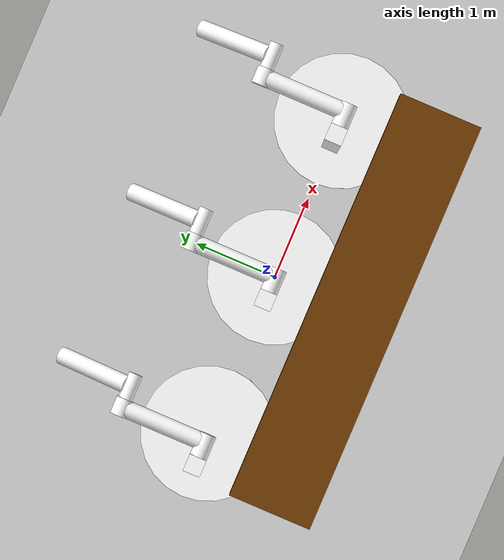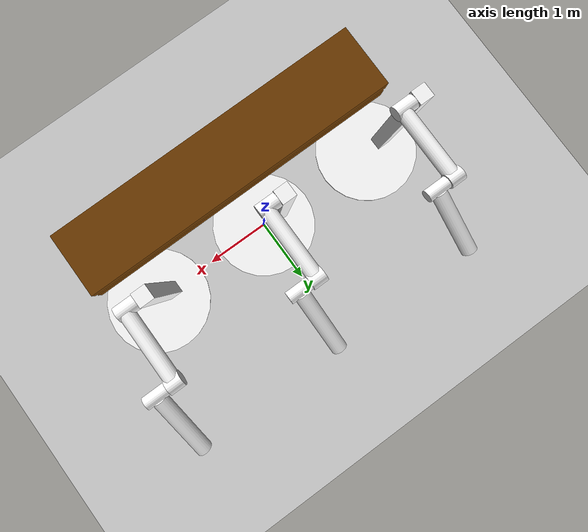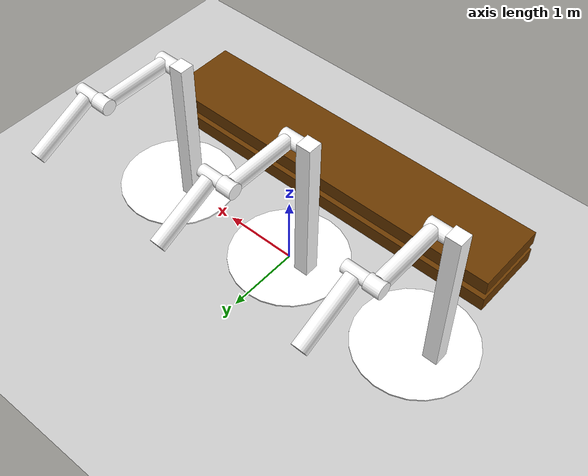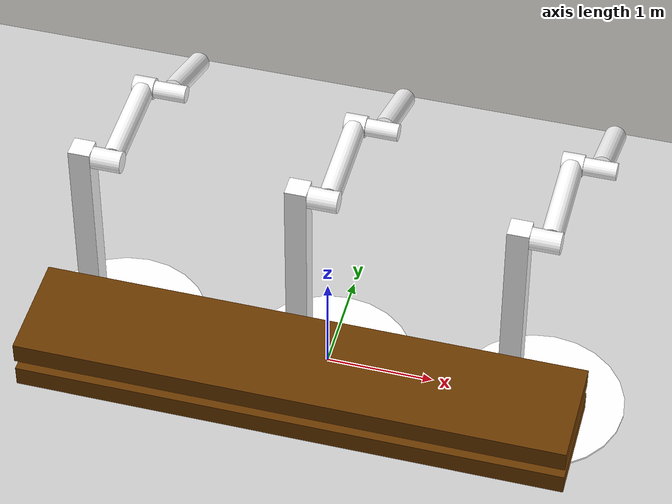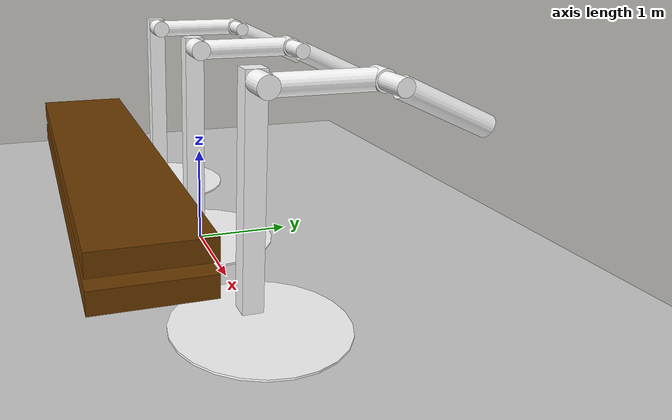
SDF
<?xml version="1.0" ?>
<sdf version="1.5">
  <world name="default">
    <include>
      <uri>model://sun</uri>
    </include>
    <include>
      <uri>model://ground_plane</uri>
    </include>
    <include>
      <uri>model://double_pendulum_with_base</uri>
      <name>pendulum_thick_mud</name>
      <pose>-2.0 0 0 0 0 0</pose>
    </include>
    <include>
      <uri>model://double_pendulum_with_base</uri>
      <name>pendulum_thin_mud</name>
      <pose>0 0 0 0 0 0</pose>
    </include>
    <include>
      <uri>model://double_pendulum_with_base</uri>
      <name>pendulum_no_mud</name>
      <pose>2.0 0 0 0 0 0</pose>
    </include>
    <model name="mud_pit_thin">
      <pose>0 -1.0 0.7 0 0 0</pose>
      <static>true</static>
      <link name="link">
        <collision name="collision">
          <geometry>
            <box>
              <size>5 1 0.2</size>
            </box>
          </geometry>
          <surface>
            <contact>
              <collide_without_contact>true</collide_without_contact>
            </contact>
          </surface>
        </collision>
        <visual name="visual">
          <geometry>
            <box>
              <size>5 1 0.2</size>
            </box>
          </geometry>
          <material>
            <ambient>0.2 0.2 0.2 1.0</ambient>
            <diffuse>.421 0.225 0.0 1.0</diffuse>
          </material>
        </visual>
        <sensor name="mud_contact" type="contact">
          <always_on>true</always_on>
          <update_rate>1000</update_rate>
          <contact>
            <collision>collision</collision>
          </contact>
        </sensor>
      </link>
      <plugin name="gazebo_mud" filename="libMudPlugin.so">
        <contact_sensor_name>link/mud_contact</contact_sensor_name>
        <stiffness>0.0</stiffness>
        <damping>1.0</damping>
        <link_name>pendulum_thin_mud::lower_link</link_name>
        <link_name>pendulum_thick_mud::lower_link</link_name>
      </plugin>
    </model>
    <model name="mud_pit_thick">
      <pose>0.0 -1.0 1.0 0 0 0</pose>
      <static>true</static>
      <link name="link">
        <collision name="collision">
          <geometry>
            <box>
              <size>5 1 0.2</size>
            </box>
          </geometry>
          <surface>
            <contact>
              <collide_without_contact>true</collide_without_contact>
            </contact>
          </surface>
        </collision>
        <visual name="visual">
          <geometry>
            <box>
              <size>5 1 0.2</size>
            </box>
          </geometry>
          <material>
            <ambient>0.2 0.2 0.2 1.0</ambient>
            <diffuse>.421 0.225 0.0 1.0</diffuse>
          </material>
        </visual>
        <sensor name="mud_contact" type="contact">
          <always_on>true</always_on>
          <update_rate>1000</update_rate>
          <contact>
            <collision>collision</collision>
          </contact>
        </sensor>
      </link>
      <plugin name="gazebo_mud" filename="libMudPlugin.so">
        <contact_sensor_name>link/mud_contact</contact_sensor_name>
        <stiffness>0.0</stiffness>
        <damping>10.0</damping>
        <link_name>pendulum_thick_mud::lower_link</link_name>
      </plugin>
    </model>
  </world>
</sdf>

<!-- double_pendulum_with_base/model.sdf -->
<sdf version="1.5">
  <model name="double_pendulum_with_base">
    <link name="base">
      <inertial>
        <mass>100</mass>
      </inertial>
      <visual name="vis_plate_on_ground">
        <pose>0 0 0.01 0 0 0</pose>
        <geometry>
          <cylinder>
            <radius>0.8</radius>
            <length>0.02</length>
          </cylinder>
        </geometry>
        <material><diffuse>1 1 1 1</diffuse><specular>0.1 0.1 0.1 1</specular></material>
      </visual>
      <visual name="vis_pole">
        <pose>-0.275 0 1.1 0 0 0</pose>
        <geometry>
          <box>
            <size>0.2 0.2 2.2</size>
          </box>
        </geometry>
        <material><diffuse>1 1 1 1</diffuse><specular>0.1 0.1 0.1 1</specular></material>
      </visual>
      <collision name="col_plate_on_ground">
        <pose>0 0 0.01 0 0 0</pose>
        <geometry>
          <cylinder>
            <radius>0.8</radius>
            <length>0.02</length>
          </cylinder>
        </geometry>
      </collision>
      <collision name="col_pole">
        <pose>-0.275 0 1.1 0 0 0</pose>
        <geometry>
          <box>
            <size>0.2 0.2 2.2</size>
          </box>
        </geometry>
      </collision>
    </link>
    <!-- upper link, length 1, IC -90 degrees -->
    <link name="upper_link">
      <pose>0 0 2.1 -1.5708 0 0</pose>
      <self_collide>0</self_collide>
      <inertial>
        <pose>0 0 0.5 0 0 0</pose>
      </inertial>
      <visual name="vis_upper_joint">
        <pose>-0.05 0 0 0 1.5708 0</pose>
        <geometry>
          <cylinder>
            <radius>0.1</radius>
            <length>0.3</length>
          </cylinder>
        </geometry>
        <material><diffuse>1 1 1 1</diffuse><specular>0.1 0.1 0.1 1</specular></material>
      </visual>
      <visual name="vis_lower_joint">
        <pose>0 0 1.0 0 1.5708 0</pose>
        <geometry>
          <cylinder>
            <radius>0.1</radius>
            <length>0.2</length>
          </cylinder>
        </geometry>
        <material><diffuse>1 1 1 1</diffuse><specular>0.1 0.1 0.1 1</specular></material>
      </visual>
      <visual name="vis_cylinder">
        <pose>0 0 0.5 0 0 0</pose>
        <geometry>
          <cylinder>
            <radius>0.1</radius>
            <length>0.9</length>
          </cylinder>
        </geometry>
        <material><diffuse>1 1 1 1</diffuse><specular>0.1 0.1 0.1 1</specular></material>
      </visual>
      <collision name="col_upper_joint">
        <pose>-0.05 0 0 0 1.5708 0</pose>
        <geometry>
          <cylinder>
            <radius>0.1</radius>
            <length>0.3</length>
          </cylinder>
        </geometry>
      </collision>
      <collision name="col_lower_joint">
        <pose>0 0 1.0 0 1.5708 0</pose>
        <geometry>
          <cylinder>
            <radius>0.1</radius>
            <length>0.2</length>
          </cylinder>
        </geometry>
      </collision>
      <collision name="col_cylinder">
        <pose>0 0 0.5 0 0 0</pose>
        <geometry>
          <cylinder>
            <radius>0.1</radius>
            <length>0.9</length>
          </cylinder>
        </geometry>
      </collision>
    </link>
    <!-- lower link, length 1, IC ~-120 degrees more -->
    <link name="lower_link">
      <pose>0.25 1.0 2.1 -2 0 0</pose>
      <self_collide>0</self_collide>
      <inertial>
        <pose>0 0 0.5 0 0 0</pose>
      </inertial>
      <visual name="vis_lower_joint">
        <pose>0 0 0 0 1.5708 0</pose>
        <geometry>
          <cylinder>
            <radius>0.08</radius>
            <length>0.3</length>
          </cylinder>
        </geometry>
        <material><diffuse>1 1 1 1</diffuse><specular>0.1 0.1 0.1 1</specular></material>
      </visual>
      <visual name="vis_cylinder">
        <pose>0 0 0.5 0 0 0</pose>
        <geometry>
          <cylinder>
            <radius>0.1</radius>
            <length>0.9</length>
          </cylinder>
        </geometry>
        <material><diffuse>1 1 1 1</diffuse><specular>0.1 0.1 0.1 1</specular></material>
      </visual>
      <collision name="col_lower_joint">
        <pose>0 0 0 0 1.5708 0</pose>
        <geometry>
          <cylinder>
            <radius>0.08</radius>
            <length>0.3</length>
          </cylinder>
        </geometry>
      </collision>
      <collision name="col_cylinder">
        <pose>0 0 0.5 0 0 0</pose>
        <geometry>
          <cylinder>
            <radius>0.1</radius>
            <length>0.9</length>
          </cylinder>
        </geometry>
      </collision>
    </link>
    <!-- pin joint for upper link, at origin of upper link -->
    <joint name="upper_joint" type="revolute">
      <parent>base</parent>
      <child>upper_link</child>
      <axis>
        <xyz>1.0 0 0</xyz>
      </axis>
    </joint>
    <!-- pin joint for lower link, at origin of child link -->
    <joint name="lower_joint" type="revolute">
      <parent>upper_link</parent>
      <child>lower_link</child>
      <axis>
        <xyz>1.0 0 0</xyz>
      </axis>
    </joint>
  </model>
</sdf>
